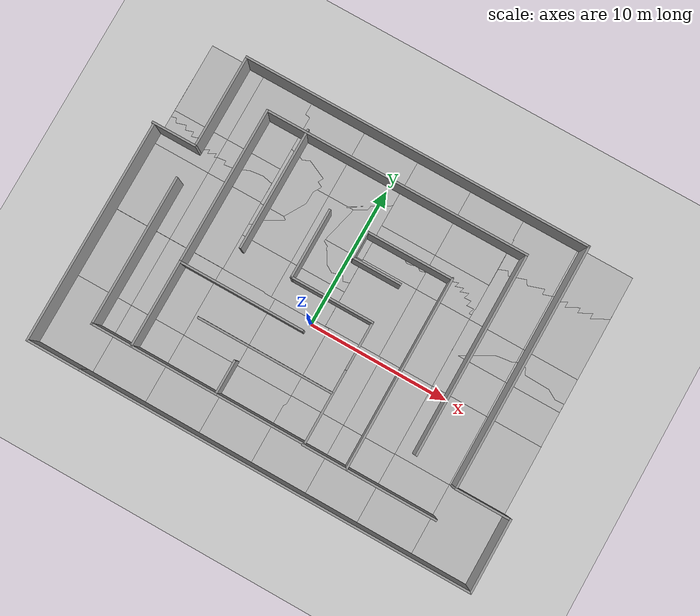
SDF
<sdf version="1.6">
 <world name="default">
  <light name="sun" type="directional">
   <pose>0 0 10 0 -0 0</pose>
   <diffuse>0.8 0.8 0.8 1</diffuse>
   <specular>0.1 0.1 0.1 1</specular>
   <attenuation>
    <range>1000</range>
    <constant>0.9</constant>
    <linear>0.01</linear>
    <quadratic>0.001</quadratic>
   </attenuation>
   <direction>-0.5 0.5 -1</direction>
  </light>
  <model name="ground_plane">
   <static>1</static>
   <link name="link">
    <collision name="collision">
     <geometry><plane><normal>0 0 1</normal><size>100 100</size></plane></geometry>
     <surface><friction><ode><mu>100</mu><mu2>50</mu2></ode></friction></surface>
    </collision>
    <visual name="visual">
     <cast_shadows>0</cast_shadows>
     <geometry><plane><normal>0 0 1</normal><size>100 100</size></plane></geometry>
     <material>
      <script><uri>file://media/materials/scripts/gazebo.material</uri><name>Gazebo/Grey</name></script>
     </material>
    </visual>
   </link>
  </model>
  <gravity>0 0 -9.8</gravity>
  <magnetic_field>6e-06 2.3e-05 -4.2e-05</magnetic_field>
  <atmosphere type="adiabatic"/>
  <physics name="default_physics" default="0" type="ode">
   <max_step_size>0.001</max_step_size>
   <real_time_factor>1</real_time_factor>
   <real_time_update_rate>1000</real_time_update_rate>
  </physics>
  <scene><ambient>0.4 0.4 0.4 1</ambient><background>0.7 0.7 0.7 1</background><shadows>1</shadows></scene>
  <spherical_coordinates>
   <surface_model>EARTH_WGS84</surface_model>
   <latitude_deg>0</latitude_deg>
   <longitude_deg>0</longitude_deg>
   <elevation>0</elevation>
   <heading_deg>0</heading_deg>
  </spherical_coordinates>
  <model name="white_corridors">
   <pose>0.90423 1.55519 0 0 -0 0</pose>
   <link name="Wall_10">
    <collision name="Wall_10_Collision">
     <geometry><box><size>6.25 0.15 2.5</size></box></geometry>
     <pose>0 0 1.25 0 -0 0</pose>
    </collision>
    <visual name="Wall_10_Visual">
     <pose>0 0 1.25 0 -0 0</pose>
     <geometry><box><size>6.25 0.15 2.5</size></box></geometry>
     <material>
      <script><uri>file://media/materials/scripts/gazebo.material</uri><name>Gazebo/Grey</name></script>
      <ambient>1 1 1 1</ambient>
     </material>
    </visual>
    <pose>-9.94493 -5.29748 0 0 -0 1.5708</pose>
   </link>
   <link name="Wall_11">
    <collision name="Wall_11_Collision">
     <geometry><box><size>9 0.15 2.5</size></box></geometry>
     <pose>0 0 1.25 0 -0 0</pose>
    </collision>
    <visual name="Wall_11_Visual">
     <pose>0 0 1.25 0 -0 0</pose>
     <geometry><box><size>9 0.15 2.5</size></box></geometry>
     <material>
      <script><uri>file://media/materials/scripts/gazebo.material</uri><name>Gazebo/Grey</name></script>
      <ambient>1 1 1 1</ambient>
     </material>
    </visual>
    <pose>-5.51993 -2.24748 0 0 -0 0</pose>
   </link>
   <link name="Wall_13">
    <collision name="Wall_13_Collision">
     <geometry><box><size>11.25 0.15 2.5</size></box></geometry>
     <pose>0 0 1.25 0 -0 0</pose>
    </collision>
    <visual name="Wall_13_Visual">
     <pose>0 0 1.25 0 -0 0</pose>
     <geometry><box><size>11.25 0.15 2.5</size></box></geometry>
     <material>
      <script><uri>file://media/materials/scripts/gazebo.material</uri><name>Gazebo/Grey</name></script>
      <ambient>1 1 1 1</ambient>
     </material>
    </visual>
    <pose>-9.94493 3.30252 0 0 -0 1.5708</pose>
   </link>
   <link name="Wall_14">
    <collision name="Wall_14_Collision">
     <geometry><box><size>19 0.15 2.5</size></box></geometry>
     <pose>0 0 1.25 0 -0 0</pose>
    </collision>
    <visual name="Wall_14_Visual">
     <pose>0 0 1.25 0 -0 0</pose>
     <geometry><box><size>19 0.15 2.5</size></box></geometry>
     <material>
      <script><uri>file://media/materials/scripts/gazebo.material</uri><name>Gazebo/Grey</name></script>
      <ambient>1 1 1 1</ambient>
     </material>
    </visual>
    <pose>-0.519931 8.85252 0 0 -0 0</pose>
   </link>
   <link name="Wall_15">
    <collision name="Wall_15_Collision">
     <geometry><box><size>14.5 0.15 2.5</size></box></geometry>
     <pose>0 0 1.25 0 -0 0</pose>
    </collision>
    <visual name="Wall_15_Visual">
     <pose>0 0 1.25 0 -0 0</pose>
     <geometry><box><size>14.5 0.15 2.5</size></box></geometry>
     <material>
      <script><uri>file://media/materials/scripts/gazebo.material</uri><name>Gazebo/Grey</name></script>
      <ambient>1 1 1 1</ambient>
     </material>
    </visual>
    <pose>8.90507 1.67752 0 0 0 -1.5708</pose>
   </link>
   <link name="Wall_19">
    <collision name="Wall_19_Collision">
     <geometry><box><size>3.5 0.15 2.5</size></box></geometry>
     <pose>0 0 1.25 0 -0 0</pose>
    </collision>
    <visual name="Wall_19_Visual">
     <pose>0 0 1.25 0 -0 0</pose>
     <geometry><box><size>3.5 0.15 2.5</size></box></geometry>
     <material>
      <script><uri>file://media/materials/scripts/gazebo.material</uri><name>Gazebo/Grey</name></script>
      <ambient>1 1 1 1</ambient>
     </material>
    </visual>
    <pose>2.50507 -1.32248 0 0 -0 1.5708</pose>
   </link>
   <link name="Wall_20">
    <collision name="Wall_20_Collision">
     <geometry><box><size>6 0.15 2.5</size></box></geometry>
     <pose>0 0 1.25 0 -0 0</pose>
    </collision>
    <visual name="Wall_20_Visual">
     <pose>0 0 1.25 0 -0 0</pose>
     <geometry><box><size>6 0.15 2.5</size></box></geometry>
     <material>
      <script><uri>file://media/materials/scripts/gazebo.material</uri><name>Gazebo/Grey</name></script>
      <ambient>1 1 1 1</ambient>
     </material>
    </visual>
    <pose>-0.419931 0.35252 0 0 -0 3.14159</pose>
   </link>
   <link name="Wall_21">
    <collision name="Wall_21_Collision">
     <geometry><box><size>5 0.15 2.5</size></box></geometry>
     <pose>0 0 1.25 0 -0 0</pose>
    </collision>
    <visual name="Wall_21_Visual">
     <pose>0 0 1.25 0 -0 0</pose>
     <geometry><box><size>5 0.15 2.5</size></box></geometry>
     <material>
      <script><uri>file://media/materials/scripts/gazebo.material</uri><name>Gazebo/Grey</name></script>
      <ambient>1 1 1 1</ambient>
     </material>
    </visual>
    <pose>-3.34493 2.77752 0 0 -0 1.5708</pose>
   </link>
   <link name="Wall_23">
    <collision name="Wall_23_Collision">
     <geometry><box><size>9.75 0.15 2.5</size></box></geometry>
     <pose>0 0 1.25 0 -0 0</pose>
    </collision>
    <visual name="Wall_23_Visual">
     <pose>0 0 1.25 0 -0 0</pose>
     <geometry><box><size>9.75 0.15 2.5</size></box></geometry>
     <material>
      <script><uri>file://media/materials/scripts/gazebo.material</uri><name>Gazebo/Grey</name></script>
      <ambient>1 1 1 1</ambient>
     </material>
    </visual>
    <pose>-2.34964 -4.74376 0 0 -0 3.14159</pose>
   </link>
   <link name="Wall_25">
    <collision name="Wall_25_Collision">
     <geometry><box><size>8.75 0.15 2.5</size></box></geometry>
     <pose>0 0 1.25 0 -0 0</pose>
    </collision>
    <visual name="Wall_25_Visual">
     <pose>0 0 1.25 0 -0 0</pose>
     <geometry><box><size>8.75 0.15 2.5</size></box></geometry>
     <material>
      <script><uri>file://media/materials/scripts/gazebo.material</uri><name>Gazebo/Grey</name></script>
      <ambient>1 1 1 1</ambient>
     </material>
    </visual>
    <pose>-7.07 4.70788 0 0 0 -1.5708</pose>
   </link>
   <link name="Wall_29">
    <collision name="Wall_29_Collision">
     <geometry><box><size>6.25 0.15 2.5</size></box></geometry>
     <pose>0 0 1.25 0 -0 0</pose>
    </collision>
    <visual name="Wall_29_Visual">
     <pose>0 0 1.25 0 -0 0</pose>
     <geometry><box><size>6.25 0.15 2.5</size></box></geometry>
     <material>
      <script><uri>file://media/materials/scripts/gazebo.material</uri><name>Gazebo/Grey</name></script>
      <ambient>1 1 1 1</ambient>
     </material>
    </visual>
    <pose>2.48701 5.18902 0 0 -0 0</pose>
   </link>
   <link name="Wall_30">
    <collision name="Wall_30_Collision">
     <geometry><box><size>13.75 0.15 2.5</size></box></geometry>
     <pose>0 0 1.25 0 -0 0</pose>
    </collision>
    <visual name="Wall_30_Visual">
     <pose>0 0 1.25 0 -0 0</pose>
     <geometry><box><size>13.75 0.15 2.5</size></box></geometry>
     <material>
      <script><uri>file://media/materials/scripts/gazebo.material</uri><name>Gazebo/Grey</name></script>
      <ambient>1 1 1 1</ambient>
     </material>
    </visual>
    <pose>5.53701 -1.61098 0 0 0 -1.5708</pose>
   </link>
   <link name="Wall_31">
    <collision name="Wall_31_Collision">
     <geometry><box><size>3.25 0.15 2.5</size></box></geometry>
     <pose>0 0 1.25 0 -0 0</pose>
    </collision>
    <visual name="Wall_31_Visual">
     <pose>0 0 1.25 0 -0 0</pose>
     <geometry><box><size>3.25 0.15 2.5</size></box></geometry>
     <material>
      <script><uri>file://media/materials/scripts/gazebo.material</uri><name>Gazebo/Grey</name></script>
      <ambient>1 1 1 1</ambient>
     </material>
    </visual>
    <pose>3.98701 -8.41098 0 0 -0 3.14159</pose>
   </link>
   <link name="Wall_33">
    <collision name="Wall_33_Collision">
     <geometry><box><size>6.5 0.15 2.5</size></box></geometry>
     <pose>0 0 1.25 0 -0 0</pose>
    </collision>
    <visual name="Wall_33_Visual">
     <pose>0 0 1.25 0 -0 0</pose>
     <geometry><box><size>6.5 0.15 2.5</size></box></geometry>
     <material>
      <script><uri>file://media/materials/scripts/gazebo.material</uri><name>Gazebo/Grey</name></script>
      <ambient>1 1 1 1</ambient>
     </material>
    </visual>
    <pose>8.71201 -8.41098 0 0 -0 0</pose>
   </link>
   <link name="Wall_37">
    <collision name="Wall_37_Collision">
     <geometry><box><size>3.5 0.15 2.5</size></box></geometry>
     <pose>0 0 1.25 0 -0 0</pose>
    </collision>
    <visual name="Wall_37_Visual">
     <pose>0 0 1.25 0 -0 0</pose>
     <geometry><box><size>3.5 0.15 2.5</size></box></geometry>
     <material>
      <script><uri>file://media/materials/scripts/gazebo.material</uri><name>Gazebo/Grey</name></script>
      <ambient>1 1 1 1</ambient>
     </material>
    </visual>
    <pose>1.16107 3.31785 0 0 -0 0</pose>
   </link>
   <link name="Wall_4">
    <collision name="Wall_4_Collision">
     <geometry><box><size>5.5 0.15 2.5</size></box></geometry>
     <pose>0 0 1.25 0 -0 0</pose>
    </collision>
    <visual name="Wall_4_Visual">
     <pose>0 0 1.25 0 -0 0</pose>
     <geometry><box><size>5.5 0.15 2.5</size></box></geometry>
     <material>
      <script><uri>file://media/materials/scripts/gazebo.material</uri><name>Gazebo/Grey</name></script>
      <ambient>1 1 1 1</ambient>
     </material>
    </visual>
    <pose>2.50507 -5.67248 0 0 0 -1.5708</pose>
   </link>
   <link name="Wall_43">
    <collision name="Wall_43_Collision">
     <geometry><box><size>2 0.15 2.5</size></box></geometry>
     <pose>0 0 1.25 0 -0 0</pose>
    </collision>
    <visual name="Wall_43_Visual">
     <pose>0 0 1.25 0 -0 0</pose>
     <geometry><box><size>2 0.15 2.5</size></box></geometry>
     <material>
      <script><uri>file://media/materials/scripts/gazebo.material</uri><name>Gazebo/Grey</name></script>
      <ambient>1 1 1 1</ambient>
     </material>
    </visual>
    <pose>-0.562989 4.26402 0 0 0 -1.5708</pose>
   </link>
   <link name="Wall_46">
    <collision name="Wall_46_Collision">
     <geometry><box><size>28 0.15 2.5</size></box></geometry>
     <pose>0 0 1.25 0 -0 0</pose>
    </collision>
    <visual name="Wall_46_Visual">
     <pose>0 0 1.25 0 -0 0</pose>
     <geometry><box><size>28 0.15 2.5</size></box></geometry>
     <material>
      <script><uri>file://media/materials/scripts/gazebo.material</uri><name>Gazebo/Grey</name></script>
      <ambient>1 1 1 1</ambient>
     </material>
    </visual>
    <pose>1.975 -11.225 0 0 -0 0</pose>
   </link>
   <link name="Wall_47">
    <collision name="Wall_47_Collision">
     <geometry><box><size>5.25 0.15 2.5</size></box></geometry>
     <pose>0 0 1.25 0 -0 0</pose>
    </collision>
    <visual name="Wall_47_Visual">
     <pose>0 0 1.25 0 -0 0</pose>
     <geometry><box><size>5.25 0.15 2.5</size></box></geometry>
     <material>
      <script><uri>file://media/materials/scripts/gazebo.material</uri><name>Gazebo/Grey</name></script>
      <ambient>1 1 1 1</ambient>
     </material>
    </visual>
    <pose>15.9 -8.675 0 0 -0 1.5708</pose>
   </link>
   <link name="Wall_48">
    <collision name="Wall_48_Collision">
     <geometry><box><size>4 0.15 2.5</size></box></geometry>
     <pose>0 0 1.25 0 -0 0</pose>
    </collision>
    <visual name="Wall_48_Visual">
     <pose>0 0 1.25 0 -0 0</pose>
     <geometry><box><size>4 0.15 2.5</size></box></geometry>
     <material>
      <script><uri>file://media/materials/scripts/gazebo.material</uri><name>Gazebo/Grey</name></script>
      <ambient>1 1 1 1</ambient>
     </material>
    </visual>
    <pose>13.975 -6.125 0 0 -0 3.14159</pose>
   </link>
   <link name="Wall_49">
    <collision name="Wall_49_Collision">
     <geometry><box><size>17.5 0.15 2.5</size></box></geometry>
     <pose>0 0 1.25 0 -0 0</pose>
    </collision>
    <visual name="Wall_49_Visual">
     <pose>0 0 1.25 0 -0 0</pose>
     <geometry><box><size>17.5 0.15 2.5</size></box></geometry>
     <material>
      <script><uri>file://media/materials/scripts/gazebo.material</uri><name>Gazebo/Grey</name></script>
      <ambient>1 1 1 1</ambient>
     </material>
    </visual>
    <pose>12.05 2.55 0 0 -0 1.5708</pose>
   </link>
   <link name="Wall_50">
    <collision name="Wall_50_Collision">
     <geometry><box><size>25 0.15 2.5</size></box></geometry>
     <pose>0 0 1.25 0 -0 0</pose>
    </collision>
    <visual name="Wall_50_Visual">
     <pose>0 0 1.25 0 -0 0</pose>
     <geometry><box><size>25 0.15 2.5</size></box></geometry>
     <material>
      <script><uri>file://media/materials/scripts/gazebo.material</uri><name>Gazebo/Grey</name></script>
      <ambient>1 1 1 1</ambient>
     </material>
    </visual>
    <pose>-0.375001 11.225 0 0 -0 3.14159</pose>
   </link>
   <link name="Wall_51">
    <collision name="Wall_51_Collision">
     <geometry><box><size>6.75 0.15 2.5</size></box></geometry>
     <pose>0 0 1.25 0 -0 0</pose>
    </collision>
    <visual name="Wall_51_Visual">
     <pose>0 0 1.25 0 -0 0</pose>
     <geometry><box><size>6.75 0.15 2.5</size></box></geometry>
     <material>
      <script><uri>file://media/materials/scripts/gazebo.material</uri><name>Gazebo/Grey</name></script>
      <ambient>1 1 1 1</ambient>
     </material>
    </visual>
    <pose>-12.8 7.925 0 0 0 -1.5708</pose>
   </link>
   <link name="Wall_52">
    <collision name="Wall_52_Collision">
     <geometry><box><size>3.25 0.15 2.5</size></box></geometry>
     <pose>0 0 1.25 0 -0 0</pose>
    </collision>
    <visual name="Wall_52_Visual">
     <pose>0 0 1.25 0 -0 0</pose>
     <geometry><box><size>3.25 0.15 2.5</size></box></geometry>
     <material>
      <script><uri>file://media/materials/scripts/gazebo.material</uri><name>Gazebo/Grey</name></script>
      <ambient>1 1 1 1</ambient>
     </material>
    </visual>
    <pose>-14.35 4.625 0 0 -0 3.14159</pose>
   </link>
   <link name="Wall_56">
    <collision name="Wall_56_Collision">
     <geometry><box><size>4 0.15 2.5</size></box></geometry>
     <pose>0 0 1.25 0 -0 0</pose>
    </collision>
    <visual name="Wall_56_Visual">
     <pose>0 0 1.25 0 -0 0</pose>
     <geometry><box><size>4 0.15 2.5</size></box></geometry>
     <material>
      <script><uri>file://media/materials/scripts/gazebo.material</uri><name>Gazebo/Grey</name></script>
      <ambient>1 1 1 1</ambient>
     </material>
    </visual>
    <pose>-13.875 -11.225 0 0 -0 3.14159</pose>
   </link>
   <link name="Wall_58">
    <collision name="Wall_58_Collision">
     <geometry><box><size>16 0.15 2.5</size></box></geometry>
     <pose>0 0 1.25 0 -0 0</pose>
    </collision>
    <visual name="Wall_58_Visual">
     <pose>0 0 1.25 0 -0 0</pose>
     <geometry><box><size>16 0.15 2.5</size></box></geometry>
     <material>
      <script><uri>file://media/materials/scripts/gazebo.material</uri><name>Gazebo/Grey</name></script>
      <ambient>1 1 1 1</ambient>
     </material>
    </visual>
    <pose>-15.8 -3.3 0 0 -0 1.5708</pose>
   </link>
   <link name="Wall_6">
    <collision name="Wall_6_Collision">
     <geometry><box><size>6.5 0.15 2.5</size></box></geometry>
     <pose>0 0 1.25 0 -0 0</pose>
    </collision>
    <visual name="Wall_6_Visual">
     <pose>0 0 1.25 0 -0 0</pose>
     <geometry><box><size>6.5 0.15 2.5</size></box></geometry>
     <material>
      <script><uri>file://media/materials/scripts/gazebo.material</uri><name>Gazebo/Grey</name></script>
      <ambient>1 1 1 1</ambient>
     </material>
    </visual>
    <pose>-0.669931 -8.34748 0 0 -0 3.14159</pose>
   </link>
   <link name="Wall_60">
    <collision name="Wall_60_Collision">
     <geometry><box><size>3 0.15 2.5</size></box></geometry>
     <pose>0 0 1.25 0 -0 0</pose>
    </collision>
    <visual name="Wall_60_Visual">
     <pose>0 0 1.25 0 -0 0</pose>
     <geometry><box><size>3 0.15 2.5</size></box></geometry>
     <material>
      <script><uri>file://media/materials/scripts/gazebo.material</uri><name>Gazebo/Grey</name></script>
      <ambient>1 1 1 1</ambient>
     </material>
    </visual>
    <pose>-11.3699 -8.34748 0 0 -0 3.14159</pose>
   </link>
   <link name="Wall_61">
    <collision name="Wall_61_Collision">
     <geometry><box><size>10.75 0.15 2.5</size></box></geometry>
     <pose>0 0 1.25 0 -0 0</pose>
    </collision>
    <visual name="Wall_61_Visual">
     <pose>0 0 1.25 0 -0 0</pose>
     <geometry><box><size>10.75 0.15 2.5</size></box></geometry>
     <material>
      <script><uri>file://media/materials/scripts/gazebo.material</uri><name>Gazebo/Grey</name></script>
      <ambient>1 1 1 1</ambient>
     </material>
    </visual>
    <pose>-12.7949 -3.04748 0 0 -0 1.5708</pose>
   </link>
   <link name="Wall_7">
    <collision name="Wall_7_Collision">
     <geometry><box><size>2.5 0.15 2.5</size></box></geometry>
     <pose>0 0 1.25 0 -0 0</pose>
    </collision>
    <visual name="Wall_7_Visual">
     <pose>0 0 1.25 0 -0 0</pose>
     <geometry><box><size>2.5 0.15 2.5</size></box></geometry>
     <material>
      <script><uri>file://media/materials/scripts/gazebo.material</uri><name>Gazebo/Grey</name></script>
      <ambient>1 1 1 1</ambient>
     </material>
    </visual>
    <pose>-3.84493 -7.17248 0 0 -0 1.5708</pose>
   </link>
   <link name="Wall_9">
    <collision name="Wall_9_Collision">
     <geometry><box><size>6.25 0.15 2.5</size></box></geometry>
     <pose>0 0 1.25 0 -0 0</pose>
    </collision>
    <visual name="Wall_9_Visual">
     <pose>0 0 1.25 0 -0 0</pose>
     <geometry><box><size>6.25 0.15 2.5</size></box></geometry>
     <material>
      <script><uri>file://media/materials/scripts/gazebo.material</uri><name>Gazebo/Grey</name></script>
      <ambient>1 1 1 1</ambient>
     </material>
    </visual>
    <pose>-6.89493 -8.34748 0 0 -0 3.14159</pose>
   </link>
   <static>1</static>
  </model>
  <model name="mud_box">
   <static>1</static>
   <link name="link">
    <collision name="collision"><geometry><box><size>8 10 0.2</size></box></geometry></collision>
    <visual name="visual_1">
     <pose>-2 2.5 0 0 -0 0</pose>
     <cast_shadows>0</cast_shadows>
     <geometry><box><size>4 5 0.2</size></box></geometry>
     <material>
      <script>
       <uri>model://mud_box/materials/scripts</uri>
       <uri>model://mud_box/materials/textures</uri>
       <name>vrc/mud</name>
      </script>
     </material>
    </visual>
    <visual name="visual_2">
     <pose>2 2.5 0 0 -0 0</pose>
     <cast_shadows>0</cast_shadows>
     <geometry><box><size>4 5 0.2</size></box></geometry>
     <material>
      <script>
       <uri>model://mud_box/materials/scripts</uri>
       <uri>model://mud_box/materials/textures</uri>
       <name>vrc/mud</name>
      </script>
     </material>
    </visual>
    <visual name="visual_3">
     <pose>2 -2.5 0 0 -0 0</pose>
     <cast_shadows>0</cast_shadows>
     <geometry><box><size>4 5 0.2</size></box></geometry>
     <material>
      <script>
       <uri>model://mud_box/materials/scripts</uri>
       <uri>model://mud_box/materials/textures</uri>
       <name>vrc/mud</name>
      </script>
     </material>
    </visual>
    <visual name="visual_4">
     <pose>-2 -2.5 0 0 -0 0</pose>
     <cast_shadows>0</cast_shadows>
     <geometry><box><size>4 5 0.2</size></box></geometry>
     <material>
      <script>
       <uri>model://mud_box/materials/scripts</uri>
       <uri>model://mud_box/materials/textures</uri>
       <name>vrc/mud</name>
      </script>
     </material>
    </visual>
   </link>
   <pose>12.7872 -4.60458 0 0 -0 0</pose>
  </model>
  <model name="mud_box_clone">
   <static>1</static>
   <link name="link">
    <collision name="collision"><geometry><box><size>8 10 0.2</size></box></geometry></collision>
    <visual name="visual_1">
     <pose>-2 2.5 0 0 -0 0</pose>
     <cast_shadows>0</cast_shadows>
     <geometry><box><size>4 5 0.2</size></box></geometry>
     <material>
      <script>
       <uri>model://mud_box/materials/scripts</uri>
       <uri>model://mud_box/materials/textures</uri>
       <name>vrc/mud</name>
      </script>
     </material>
    </visual>
    <visual name="visual_2">
     <pose>2 2.5 0 0 -0 0</pose>
     <cast_shadows>0</cast_shadows>
     <geometry><box><size>4 5 0.2</size></box></geometry>
     <material>
      <script>
       <uri>model://mud_box/materials/scripts</uri>
       <uri>model://mud_box/materials/textures</uri>
       <name>vrc/mud</name>
      </script>
     </material>
    </visual>
    <visual name="visual_3">
     <pose>2 -2.5 0 0 -0 0</pose>
     <cast_shadows>0</cast_shadows>
     <geometry><box><size>4 5 0.2</size></box></geometry>
     <material>
      <script>
       <uri>model://mud_box/materials/scripts</uri>
       <uri>model://mud_box/materials/textures</uri>
       <name>vrc/mud</name>
      </script>
     </material>
    </visual>
    <visual name="visual_4">
     <pose>-2 -2.5 0 0 -0 0</pose>
     <cast_shadows>0</cast_shadows>
     <geometry><box><size>4 5 0.2</size></box></geometry>
     <material>
      <script>
       <uri>model://mud_box/materials/scripts</uri>
       <uri>model://mud_box/materials/textures</uri>
       <name>vrc/mud</name>
      </script>
     </material>
    </visual>
   </link>
   <pose>5.00381 -4.62675 0 0 -0 0</pose>
  </model>
  <model name="mud_box_clone_0">
   <static>1</static>
   <link name="link">
    <collision name="collision"><geometry><box><size>8 10 0.2</size></box></geometry></collision>
    <visual name="visual_1">
     <pose>-2 2.5 0 0 -0 0</pose>
     <cast_shadows>0</cast_shadows>
     <geometry><box><size>4 5 0.2</size></box></geometry>
     <material>
      <script>
       <uri>model://mud_box/materials/scripts</uri>
       <uri>model://mud_box/materials/textures</uri>
       <name>vrc/mud</name>
      </script>
     </material>
    </visual>
    <visual name="visual_2">
     <pose>2 2.5 0 0 -0 0</pose>
     <cast_shadows>0</cast_shadows>
     <geometry><box><size>4 5 0.2</size></box></geometry>
     <material>
      <script>
       <uri>model://mud_box/materials/scripts</uri>
       <uri>model://mud_box/materials/textures</uri>
       <name>vrc/mud</name>
      </script>
     </material>
    </visual>
    <visual name="visual_3">
     <pose>2 -2.5 0 0 -0 0</pose>
     <cast_shadows>0</cast_shadows>
     <geometry><box><size>4 5 0.2</size></box></geometry>
     <material>
      <script>
       <uri>model://mud_box/materials/scripts</uri>
       <uri>model://mud_box/materials/textures</uri>
       <name>vrc/mud</name>
      </script>
     </material>
    </visual>
    <visual name="visual_4">
     <pose>-2 -2.5 0 0 -0 0</pose>
     <cast_shadows>0</cast_shadows>
     <geometry><box><size>4 5 0.2</size></box></geometry>
     <material>
      <script>
       <uri>model://mud_box/materials/scripts</uri>
       <uri>model://mud_box/materials/textures</uri>
       <name>vrc/mud</name>
      </script>
     </material>
    </visual>
   </link>
   <pose>-2.86401 -4.64909 0 0 -0 0</pose>
  </model>
  <model name="mud_box_clone_1">
   <static>1</static>
   <link name="link">
    <collision name="collision"><geometry><box><size>8 10 0.2</size></box></geometry></collision>
    <visual name="visual_1">
     <pose>-2 2.5 0 0 -0 0</pose>
     <cast_shadows>0</cast_shadows>
     <geometry><box><size>4 5 0.2</size></box></geometry>
     <material>
      <script>
       <uri>model://mud_box/materials/scripts</uri>
       <uri>model://mud_box/materials/textures</uri>
       <name>vrc/mud</name>
      </script>
     </material>
    </visual>
    <visual name="visual_2">
     <pose>2 2.5 0 0 -0 0</pose>
     <cast_shadows>0</cast_shadows>
     <geometry><box><size>4 5 0.2</size></box></geometry>
     <material>
      <script>
       <uri>model://mud_box/materials/scripts</uri>
       <uri>model://mud_box/materials/textures</uri>
       <name>vrc/mud</name>
      </script>
     </material>
    </visual>
    <visual name="visual_3">
     <pose>2 -2.5 0 0 -0 0</pose>
     <cast_shadows>0</cast_shadows>
     <geometry><box><size>4 5 0.2</size></box></geometry>
     <material>
      <script>
       <uri>model://mud_box/materials/scripts</uri>
       <uri>model://mud_box/materials/textures</uri>
       <name>vrc/mud</name>
      </script>
     </material>
    </visual>
    <visual name="visual_4">
     <pose>-2 -2.5 0 0 -0 0</pose>
     <cast_shadows>0</cast_shadows>
     <geometry><box><size>4 5 0.2</size></box></geometry>
     <material>
      <script>
       <uri>model://mud_box/materials/scripts</uri>
       <uri>model://mud_box/materials/textures</uri>
       <name>vrc/mud</name>
      </script>
     </material>
    </visual>
   </link>
   <pose>-10.8094 -4.64223 0 0 -0 0</pose>
  </model>
  <model name="mud_box_clone_2">
   <static>1</static>
   <link name="link">
    <collision name="collision"><geometry><box><size>8 10 0.2</size></box></geometry></collision>
    <visual name="visual_1">
     <pose>-2 2.5 0 0 -0 0</pose>
     <cast_shadows>0</cast_shadows>
     <geometry><box><size>4 5 0.2</size></box></geometry>
     <material>
      <script>
       <uri>model://mud_box/materials/scripts</uri>
       <uri>model://mud_box/materials/textures</uri>
       <name>vrc/mud</name>
      </script>
     </material>
    </visual>
    <visual name="visual_2">
     <pose>2 2.5 0 0 -0 0</pose>
     <cast_shadows>0</cast_shadows>
     <geometry><box><size>4 5 0.2</size></box></geometry>
     <material>
      <script>
       <uri>model://mud_box/materials/scripts</uri>
       <uri>model://mud_box/materials/textures</uri>
       <name>vrc/mud</name>
      </script>
     </material>
    </visual>
    <visual name="visual_3">
     <pose>2 -2.5 0 0 -0 0</pose>
     <cast_shadows>0</cast_shadows>
     <geometry><box><size>4 5 0.2</size></box></geometry>
     <material>
      <script>
       <uri>model://mud_box/materials/scripts</uri>
       <uri>model://mud_box/materials/textures</uri>
       <name>vrc/mud</name>
      </script>
     </material>
    </visual>
    <visual name="visual_4">
     <pose>-2 -2.5 0 0 -0 0</pose>
     <cast_shadows>0</cast_shadows>
     <geometry><box><size>4 5 0.2</size></box></geometry>
     <material>
      <script>
       <uri>model://mud_box/materials/scripts</uri>
       <uri>model://mud_box/materials/textures</uri>
       <name>vrc/mud</name>
      </script>
     </material>
    </visual>
   </link>
   <pose>12.7697 5.34901 0 0 -0 0</pose>
  </model>
  <model name="mud_box_clone_3">
   <static>1</static>
   <link name="link">
    <collision name="collision"><geometry><box><size>8 10 0.2</size></box></geometry></collision>
    <visual name="visual_1">
     <pose>-2 2.5 0 0 -0 0</pose>
     <cast_shadows>0</cast_shadows>
     <geometry><box><size>4 5 0.2</size></box></geometry>
     <material>
      <script>
       <uri>model://mud_box/materials/scripts</uri>
       <uri>model://mud_box/materials/textures</uri>
       <name>vrc/mud</name>
      </script>
     </material>
    </visual>
    <visual name="visual_2">
     <pose>2 2.5 0 0 -0 0</pose>
     <cast_shadows>0</cast_shadows>
     <geometry><box><size>4 5 0.2</size></box></geometry>
     <material>
      <script>
       <uri>model://mud_box/materials/scripts</uri>
       <uri>model://mud_box/materials/textures</uri>
       <name>vrc/mud</name>
      </script>
     </material>
    </visual>
    <visual name="visual_3">
     <pose>2 -2.5 0 0 -0 0</pose>
     <cast_shadows>0</cast_shadows>
     <geometry><box><size>4 5 0.2</size></box></geometry>
     <material>
      <script>
       <uri>model://mud_box/materials/scripts</uri>
       <uri>model://mud_box/materials/textures</uri>
       <name>vrc/mud</name>
      </script>
     </material>
    </visual>
    <visual name="visual_4">
     <pose>-2 -2.5 0 0 -0 0</pose>
     <cast_shadows>0</cast_shadows>
     <geometry><box><size>4 5 0.2</size></box></geometry>
     <material>
      <script>
       <uri>model://mud_box/materials/scripts</uri>
       <uri>model://mud_box/materials/textures</uri>
       <name>vrc/mud</name>
      </script>
     </material>
    </visual>
   </link>
   <pose>4.83716 5.36095 0 0 -0 0</pose>
  </model>
  <model name="mud_box_clone_4">
   <static>1</static>
   <link name="link">
    <collision name="collision"><geometry><box><size>8 10 0.2</size></box></geometry></collision>
    <visual name="visual_1">
     <pose>-2 2.5 0 0 -0 0</pose>
     <cast_shadows>0</cast_shadows>
     <geometry><box><size>4 5 0.2</size></box></geometry>
     <material>
      <script>
       <uri>model://mud_box/materials/scripts</uri>
       <uri>model://mud_box/materials/textures</uri>
       <name>vrc/mud</name>
      </script>
     </material>
    </visual>
    <visual name="visual_2">
     <pose>2 2.5 0 0 -0 0</pose>
     <cast_shadows>0</cast_shadows>
     <geometry><box><size>4 5 0.2</size></box></geometry>
     <material>
      <script>
       <uri>model://mud_box/materials/scripts</uri>
       <uri>model://mud_box/materials/textures</uri>
       <name>vrc/mud</name>
      </script>
     </material>
    </visual>
    <visual name="visual_3">
     <pose>2 -2.5 0 0 -0 0</pose>
     <cast_shadows>0</cast_shadows>
     <geometry><box><size>4 5 0.2</size></box></geometry>
     <material>
      <script>
       <uri>model://mud_box/materials/scripts</uri>
       <uri>model://mud_box/materials/textures</uri>
       <name>vrc/mud</name>
      </script>
     </material>
    </visual>
    <visual name="visual_4">
     <pose>-2 -2.5 0 0 -0 0</pose>
     <cast_shadows>0</cast_shadows>
     <geometry><box><size>4 5 0.2</size></box></geometry>
     <material>
      <script>
       <uri>model://mud_box/materials/scripts</uri>
       <uri>model://mud_box/materials/textures</uri>
       <name>vrc/mud</name>
      </script>
     </material>
    </visual>
   </link>
   <pose>-3.16413 5.30374 0 0 -0 0</pose>
  </model>
  <model name="mud_box_clone_5">
   <static>1</static>
   <link name="link">
    <collision name="collision"><geometry><box><size>8 10 0.2</size></box></geometry></collision>
    <visual name="visual_1">
     <pose>-2 2.5 0 0 -0 0</pose>
     <cast_shadows>0</cast_shadows>
     <geometry><box><size>4 5 0.2</size></box></geometry>
     <material>
      <script>
       <uri>model://mud_box/materials/scripts</uri>
       <uri>model://mud_box/materials/textures</uri>
       <name>vrc/mud</name>
      </script>
     </material>
    </visual>
    <visual name="visual_2">
     <pose>2 2.5 0 0 -0 0</pose>
     <cast_shadows>0</cast_shadows>
     <geometry><box><size>4 5 0.2</size></box></geometry>
     <material>
      <script>
       <uri>model://mud_box/materials/scripts</uri>
       <uri>model://mud_box/materials/textures</uri>
       <name>vrc/mud</name>
      </script>
     </material>
    </visual>
    <visual name="visual_3">
     <pose>2 -2.5 0 0 -0 0</pose>
     <cast_shadows>0</cast_shadows>
     <geometry><box><size>4 5 0.2</size></box></geometry>
     <material>
      <script>
       <uri>model://mud_box/materials/scripts</uri>
       <uri>model://mud_box/materials/textures</uri>
       <name>vrc/mud</name>
      </script>
     </material>
    </visual>
    <visual name="visual_4">
     <pose>-2 -2.5 0 0 -0 0</pose>
     <cast_shadows>0</cast_shadows>
     <geometry><box><size>4 5 0.2</size></box></geometry>
     <material>
      <script>
       <uri>model://mud_box/materials/scripts</uri>
       <uri>model://mud_box/materials/textures</uri>
       <name>vrc/mud</name>
      </script>
     </material>
    </visual>
   </link>
   <pose>-10.8174 5.36383 0 0 -0 0</pose>
  </model>
  <model name="mud_box_clone_6">
   <static>1</static>
   <link name="link">
    <collision name="collision"><geometry><box><size>8 10 0.2</size></box></geometry></collision>
    <visual name="visual_1">
     <pose>-2 2.5 0 0 -0 0</pose>
     <cast_shadows>0</cast_shadows>
     <geometry><box><size>4 5 0.2</size></box></geometry>
     <material>
      <script>
       <uri>model://mud_box/materials/scripts</uri>
       <uri>model://mud_box/materials/textures</uri>
       <name>vrc/mud</name>
      </script>
     </material>
    </visual>
    <visual name="visual_2">
     <pose>2 2.5 0 0 -0 0</pose>
     <cast_shadows>0</cast_shadows>
     <geometry><box><size>4 5 0.2</size></box></geometry>
     <material>
      <script>
       <uri>model://mud_box/materials/scripts</uri>
       <uri>model://mud_box/materials/textures</uri>
       <name>vrc/mud</name>
      </script>
     </material>
    </visual>
    <visual name="visual_3">
     <pose>2 -2.5 0 0 -0 0</pose>
     <cast_shadows>0</cast_shadows>
     <geometry><box><size>4 5 0.2</size></box></geometry>
     <material>
      <script>
       <uri>model://mud_box/materials/scripts</uri>
       <uri>model://mud_box/materials/textures</uri>
       <name>vrc/mud</name>
      </script>
     </material>
    </visual>
    <visual name="visual_4">
     <pose>-2 -2.5 0 0 -0 0</pose>
     <cast_shadows>0</cast_shadows>
     <geometry><box><size>4 5 0.2</size></box></geometry>
     <material>
      <script>
       <uri>model://mud_box/materials/scripts</uri>
       <uri>model://mud_box/materials/textures</uri>
       <name>vrc/mud</name>
      </script>
     </material>
    </visual>
   </link>
   <pose>12.7621 7.92256 0 0 -0 0</pose>
  </model>
  <model name="mud_box_clone_7">
   <static>1</static>
   <link name="link">
    <collision name="collision"><geometry><box><size>8 10 0.2</size></box></geometry></collision>
    <visual name="visual_1">
     <pose>-2 2.5 0 0 -0 0</pose>
     <cast_shadows>0</cast_shadows>
     <geometry><box><size>4 5 0.2</size></box></geometry>
     <material>
      <script>
       <uri>model://mud_box/materials/scripts</uri>
       <uri>model://mud_box/materials/textures</uri>
       <name>vrc/mud</name>
      </script>
     </material>
    </visual>
    <visual name="visual_2">
     <pose>2 2.5 0 0 -0 0</pose>
     <cast_shadows>0</cast_shadows>
     <geometry><box><size>4 5 0.2</size></box></geometry>
     <material>
      <script>
       <uri>model://mud_box/materials/scripts</uri>
       <uri>model://mud_box/materials/textures</uri>
       <name>vrc/mud</name>
      </script>
     </material>
    </visual>
    <visual name="visual_3">
     <pose>2 -2.5 0 0 -0 0</pose>
     <cast_shadows>0</cast_shadows>
     <geometry><box><size>4 5 0.2</size></box></geometry>
     <material>
      <script>
       <uri>model://mud_box/materials/scripts</uri>
       <uri>model://mud_box/materials/textures</uri>
       <name>vrc/mud</name>
      </script>
     </material>
    </visual>
    <visual name="visual_4">
     <pose>-2 -2.5 0 0 -0 0</pose>
     <cast_shadows>0</cast_shadows>
     <geometry><box><size>4 5 0.2</size></box></geometry>
     <material>
      <script>
       <uri>model://mud_box/materials/scripts</uri>
       <uri>model://mud_box/materials/textures</uri>
       <name>vrc/mud</name>
      </script>
     </material>
    </visual>
   </link>
   <pose>4.81759 7.91578 0 0 -0 0</pose>
  </model>
  <model name="mud_box_clone_8">
   <static>1</static>
   <link name="link">
    <collision name="collision"><geometry><box><size>8 10 0.2</size></box></geometry></collision>
    <visual name="visual_1">
     <pose>-2 2.5 0 0 -0 0</pose>
     <cast_shadows>0</cast_shadows>
     <geometry><box><size>4 5 0.2</size></box></geometry>
     <material>
      <script>
       <uri>model://mud_box/materials/scripts</uri>
       <uri>model://mud_box/materials/textures</uri>
       <name>vrc/mud</name>
      </script>
     </material>
    </visual>
    <visual name="visual_2">
     <pose>2 2.5 0 0 -0 0</pose>
     <cast_shadows>0</cast_shadows>
     <geometry><box><size>4 5 0.2</size></box></geometry>
     <material>
      <script>
       <uri>model://mud_box/materials/scripts</uri>
       <uri>model://mud_box/materials/textures</uri>
       <name>vrc/mud</name>
      </script>
     </material>
    </visual>
    <visual name="visual_3">
     <pose>2 -2.5 0 0 -0 0</pose>
     <cast_shadows>0</cast_shadows>
     <geometry><box><size>4 5 0.2</size></box></geometry>
     <material>
      <script>
       <uri>model://mud_box/materials/scripts</uri>
       <uri>model://mud_box/materials/textures</uri>
       <name>vrc/mud</name>
      </script>
     </material>
    </visual>
    <visual name="visual_4">
     <pose>-2 -2.5 0 0 -0 0</pose>
     <cast_shadows>0</cast_shadows>
     <geometry><box><size>4 5 0.2</size></box></geometry>
     <material>
      <script>
       <uri>model://mud_box/materials/scripts</uri>
       <uri>model://mud_box/materials/textures</uri>
       <name>vrc/mud</name>
      </script>
     </material>
    </visual>
   </link>
   <pose>-3.15833 7.90825 0 0 -0 0</pose>
  </model>
  <model name="mud_box_clone_9">
   <static>1</static>
   <link name="link">
    <collision name="collision"><geometry><box><size>8 10 0.2</size></box></geometry></collision>
    <visual name="visual_1">
     <pose>-2 2.5 0 0 -0 0</pose>
     <cast_shadows>0</cast_shadows>
     <geometry><box><size>4 5 0.2</size></box></geometry>
     <material>
      <script>
       <uri>model://mud_box/materials/scripts</uri>
       <uri>model://mud_box/materials/textures</uri>
       <name>vrc/mud</name>
      </script>
     </material>
    </visual>
    <visual name="visual_2">
     <pose>2 2.5 0 0 -0 0</pose>
     <cast_shadows>0</cast_shadows>
     <geometry><box><size>4 5 0.2</size></box></geometry>
     <material>
      <script>
       <uri>model://mud_box/materials/scripts</uri>
       <uri>model://mud_box/materials/textures</uri>
       <name>vrc/mud</name>
      </script>
     </material>
    </visual>
    <visual name="visual_3">
     <pose>2 -2.5 0 0 -0 0</pose>
     <cast_shadows>0</cast_shadows>
     <geometry><box><size>4 5 0.2</size></box></geometry>
     <material>
      <script>
       <uri>model://mud_box/materials/scripts</uri>
       <uri>model://mud_box/materials/textures</uri>
       <name>vrc/mud</name>
      </script>
     </material>
    </visual>
    <visual name="visual_4">
     <pose>-2 -2.5 0 0 -0 0</pose>
     <cast_shadows>0</cast_shadows>
     <geometry><box><size>4 5 0.2</size></box></geometry>
     <material>
      <script>
       <uri>model://mud_box/materials/scripts</uri>
       <uri>model://mud_box/materials/textures</uri>
       <name>vrc/mud</name>
      </script>
     </material>
    </visual>
   </link>
   <pose>-10.8104 7.90543 0 0 -0 0</pose>
  </model>
 </world>
</sdf>
